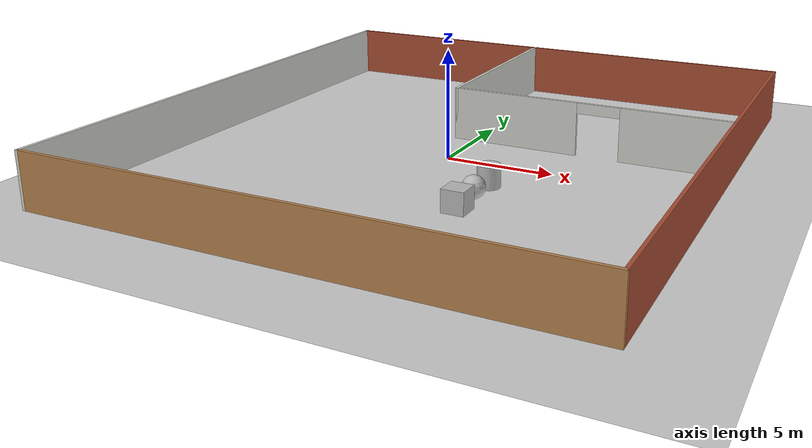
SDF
<sdf version="1.6">
 <world name="default">
  <light name="sun" type="directional">
   <pose>0 0 10 0 -0 0</pose>
   <diffuse>0.8 0.8 0.8 1</diffuse>
   <specular>0.2 0.2 0.2 1</specular>
   <attenuation>
    <range>1000</range>
    <constant>0.9</constant>
    <linear>0.01</linear>
    <quadratic>0.001</quadratic>
   </attenuation>
   <direction>-0.5 0.1 -0.9</direction>
  </light>
  <model name="ground_plane">
   <static>1</static>
   <link name="link">
    <collision name="collision">
     <geometry><plane><normal>0 0 1</normal><size>100 100</size></plane></geometry>
     <surface>
      <contact><collide_bitmask>65535</collide_bitmask></contact>
      <friction><ode><mu>100</mu><mu2>50</mu2></ode></friction>
     </surface>
    </collision>
    <visual name="visual">
     <cast_shadows>0</cast_shadows>
     <geometry><plane><normal>0 0 1</normal><size>100 100</size></plane></geometry>
     <material>
      <script><uri>file://media/materials/scripts/gazebo.material</uri><name>Gazebo/Grey</name></script>
     </material>
    </visual>
   </link>
  </model>
  <gravity>0 0 -9.8</gravity>
  <magnetic_field>6e-06 2.3e-05 -4.2e-05</magnetic_field>
  <atmosphere type="adiabatic"/>
  <physics name="default_physics" default="0" type="ode">
   <max_step_size>0.001</max_step_size>
   <real_time_factor>1</real_time_factor>
   <real_time_update_rate>1000</real_time_update_rate>
  </physics>
  <scene><ambient>0.4 0.4 0.4 1</ambient><background>0.7 0.7 0.7 1</background><shadows>1</shadows></scene>
  <spherical_coordinates>
   <surface_model>EARTH_WGS84</surface_model>
   <latitude_deg>0</latitude_deg>
   <longitude_deg>0</longitude_deg>
   <elevation>0</elevation>
   <heading_deg>0</heading_deg>
  </spherical_coordinates>
  <model name="MyWorld">
   <link name="Wall_0">
    <collision name="Wall_0_Collision">
     <geometry><box><size>24.15 0.15 2.5</size></box></geometry>
     <pose>0 0 1.25 0 -0 0</pose>
    </collision>
    <visual name="Wall_0_Visual">
     <pose>0 0 1.25 0 -0 0</pose>
     <geometry><box><size>24.15 0.15 2.5</size></box></geometry>
     <material>
      <script><uri>file://media/materials/scripts/gazebo.material</uri><name>Gazebo/Bricks</name></script>
      <ambient>1 1 1 1</ambient>
     </material>
     <meta><layer>0</layer></meta>
    </visual>
    <pose>0 13 0 0 -0 0</pose>
   </link>
   <link name="Wall_2">
    <collision name="Wall_2_Collision">
     <geometry><box><size>26.15 0.15 2.5</size></box></geometry>
     <pose>0 0 1.25 0 -0 0</pose>
    </collision>
    <visual name="Wall_2_Visual">
     <pose>0 0 1.25 0 -0 0</pose>
     <geometry><box><size>26.15 0.15 2.5</size></box></geometry>
     <material>
      <script><uri>file://media/materials/scripts/gazebo.material</uri><name>Gazebo/Bricks</name></script>
      <ambient>0.921569 0.807843 0.615686 1</ambient>
     </material>
     <meta><layer>0</layer></meta>
    </visual>
    <pose>12 0 0 0 0 -1.5708</pose>
   </link>
   <link name="Wall_3">
    <collision name="Wall_3_Collision">
     <geometry><box><size>24.15 0.15 2.5</size></box></geometry>
     <pose>0 0 1.25 0 -0 0</pose>
    </collision>
    <visual name="Wall_3_Visual">
     <pose>0 0 1.25 0 -0 0</pose>
     <geometry><box><size>24.15 0.15 2.5</size></box></geometry>
     <material>
      <script><uri>file://media/materials/scripts/gazebo.material</uri><name>Gazebo/Wood</name></script>
      <ambient>0.760784 0.662745 0.627451 1</ambient>
     </material>
     <meta><layer>0</layer></meta>
    </visual>
    <pose>0 -13 0 0 -0 3.14159</pose>
   </link>
   <link name="Wall_4">
    <collision name="Wall_4_Collision">
     <geometry><box><size>26.15 0.15 2.5</size></box></geometry>
     <pose>0 0 1.25 0 -0 0</pose>
    </collision>
    <visual name="Wall_4_Visual">
     <pose>0 0 1.25 0 -0 0</pose>
     <geometry><box><size>26.15 0.15 2.5</size></box></geometry>
     <material>
      <script><uri>file://media/materials/scripts/gazebo.material</uri><name>Gazebo/CeilingTiled</name></script>
      <ambient>0.435294 0.796078 0.67451 1</ambient>
     </material>
     <meta><layer>0</layer></meta>
    </visual>
    <pose>-12 0 0 0 -0 1.5708</pose>
   </link>
   <link name="Wall_6">
    <collision name="Wall_6_Collision">
     <geometry><box><size>10.15 0.15 2.5</size></box></geometry>
     <pose>0 0 1.25 0 -0 0</pose>
    </collision>
    <visual name="Wall_6_Visual">
     <pose>0 0 1.25 0 -0 0</pose>
     <geometry><box><size>10.15 0.15 2.5</size></box></geometry>
     <material>
      <script><uri>file://media/materials/scripts/gazebo.material</uri><name>Gazebo/CeilingTiled</name></script>
      <ambient>0.435294 0.796078 0.67451 1</ambient>
     </material>
     <meta><layer>0</layer></meta>
    </visual>
    <pose>-1 8 0 0 0 -1.5708</pose>
   </link>
   <link name="Wall_7">
    <pose>5.5 3 0 0 -0 0</pose>
    <visual name="Wall_7_Visual_0">
     <pose>-3.5375 0 1.25 0 -0 0</pose>
     <geometry><box><size>6.075 0.15 2.5</size></box></geometry>
     <material>
      <script><uri>file://media/materials/scripts/gazebo.material</uri><name>Gazebo/CeilingTiled</name></script>
      <ambient>0.760784 0.662745 0.627451 1</ambient>
     </material>
     <meta><layer>0</layer></meta>
    </visual>
    <collision name="Wall_7_Collision_0">
     <geometry><box><size>6.075 0.15 2.5</size></box></geometry>
     <pose>-3.5375 0 1.25 0 -0 0</pose>
    </collision>
    <visual name="Wall_7_Visual_1">
     <pose>4.0375 0 1.25 0 -0 0</pose>
     <geometry><box><size>5.075 0.15 2.5</size></box></geometry>
     <material>
      <script><uri>file://media/materials/scripts/gazebo.material</uri><name>Gazebo/CeilingTiled</name></script>
      <ambient>0.760784 0.662745 0.627451 1</ambient>
     </material>
     <meta><layer>0</layer></meta>
    </visual>
    <collision name="Wall_7_Collision_1">
     <geometry><box><size>5.075 0.15 2.5</size></box></geometry>
     <pose>4.0375 0 1.25 0 -0 0</pose>
    </collision>
    <visual name="Wall_7_Visual_2">
     <pose>0.5 0 2.25 0 -0 0</pose>
     <geometry><box><size>2 0.15 0.5</size></box></geometry>
     <material>
      <script><uri>file://media/materials/scripts/gazebo.material</uri><name>Gazebo/CeilingTiled</name></script>
      <ambient>0.760784 0.662745 0.627451 1</ambient>
     </material>
     <meta><layer>0</layer></meta>
    </visual>
    <collision name="Wall_7_Collision_2">
     <geometry><box><size>2 0.15 0.5</size></box></geometry>
     <pose>0.5 0 2.25 0 -0 0</pose>
    </collision>
   </link>
   <static>1</static>
  </model>
  <model name="textured_shapes">
   <pose>3.14793 -4.04624 0.5 0 -0 0</pose>
   <link name="box">
    <pose>0 -1.5 0 0 -0 0</pose>
    <collision name="collision"><geometry><box><size>1 1 1</size></box></geometry></collision>
    <visual name="visual">
     <geometry><box><size>1 1 1</size></box></geometry>
     <material>
      <script>
       <uri>model://textured_shapes/materials/scripts</uri>
       <uri>model://textured_shapes/materials/textures</uri>
       <name>TexturedShape/Squares</name>
      </script>
     </material>
    </visual>
    <inertial>
     <inertia><ixx>1</ixx><ixy>0</ixy><ixz>0</ixz><iyy>1</iyy><iyz>0</iyz><izz>1</izz></inertia>
     <mass>1</mass>
    </inertial>
   </link>
   <link name="sphere">
    <collision name="collision"><geometry><sphere><radius>0.5</radius></sphere></geometry></collision>
    <visual name="visual">
     <geometry><sphere><radius>0.5</radius></sphere></geometry>
     <material>
      <script>
       <uri>model://textured_shapes/materials/scripts</uri>
       <uri>model://textured_shapes/materials/textures</uri>
       <name>TexturedShape/Squares</name>
      </script>
     </material>
    </visual>
    <inertial>
     <inertia><ixx>1</ixx><ixy>0</ixy><ixz>0</ixz><iyy>1</iyy><iyz>0</iyz><izz>1</izz></inertia>
     <mass>1</mass>
    </inertial>
   </link>
   <link name="cylinder">
    <pose>0 1.5 0 0 -0 0</pose>
    <collision name="collision">
     <geometry><cylinder><radius>0.5</radius><length>1</length></cylinder></geometry>
    </collision>
    <visual name="visual">
     <geometry><cylinder><radius>0.5</radius><length>1</length></cylinder></geometry>
     <material>
      <script>
       <uri>model://textured_shapes/materials/scripts</uri>
       <uri>model://textured_shapes/materials/textures</uri>
       <name>TexturedShape/Squares</name>
      </script>
     </material>
    </visual>
    <inertial>
     <inertia><ixx>1</ixx><ixy>0</ixy><ixz>0</ixz><iyy>1</iyy><iyz>0</iyz><izz>1</izz></inertia>
     <mass>1</mass>
    </inertial>
   </link>
  </model>
 </world>
</sdf>
